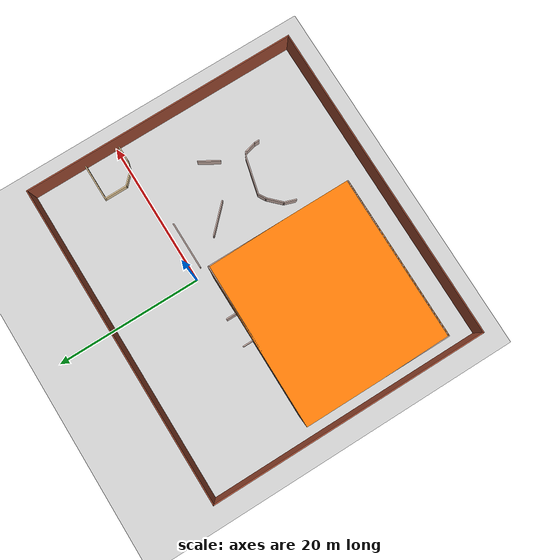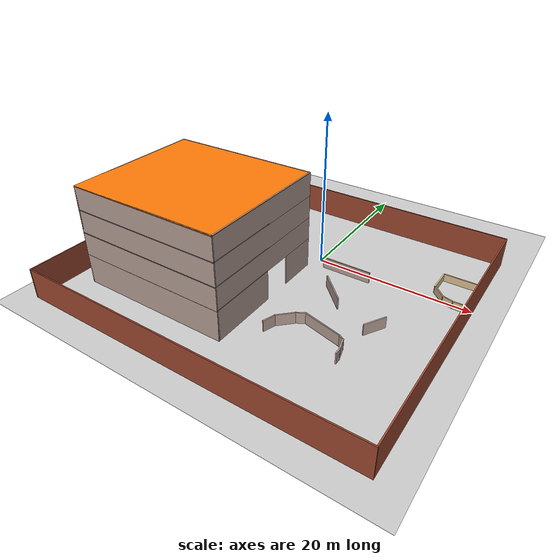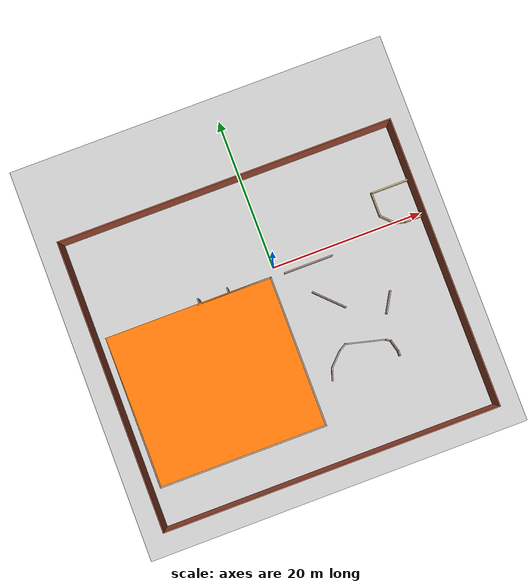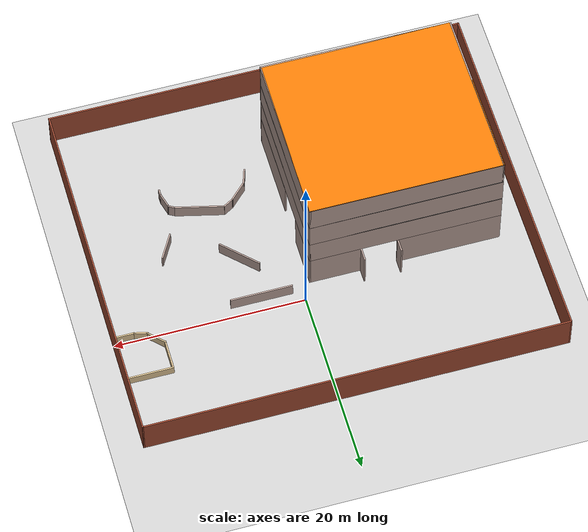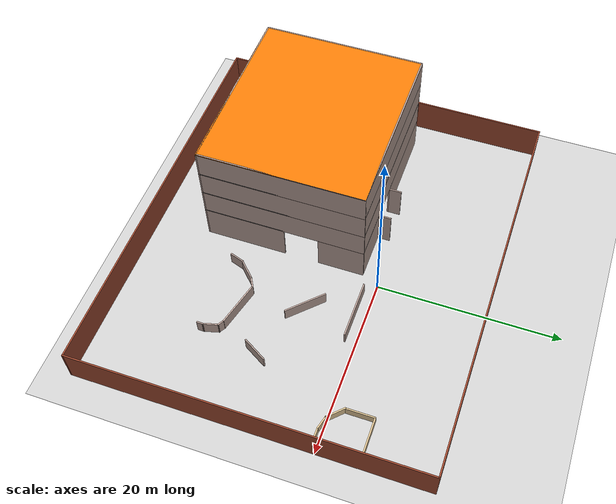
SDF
<sdf version="1.6">
 <world name="default">
  <light name="sun" type="directional">
   <pose>0 0 10 0 -0 0</pose>
   <diffuse>0.8 0.8 0.8 1</diffuse>
   <specular>0.2 0.2 0.2 1</specular>
   <attenuation>
    <range>1000</range>
    <constant>0.9</constant>
    <linear>0.01</linear>
    <quadratic>0.001</quadratic>
   </attenuation>
   <direction>-0.5 0.1 -0.9</direction>
  </light>
  <model name="ground_plane">
   <static>1</static>
   <link name="link">
    <collision name="collision">
     <geometry><plane><normal>0 0 1</normal><size>100 100</size></plane></geometry>
     <surface><friction><ode><mu>100</mu><mu2>50</mu2></ode></friction></surface>
    </collision>
    <visual name="visual">
     <cast_shadows>0</cast_shadows>
     <geometry><plane><normal>0 0 1</normal><size>100 100</size></plane></geometry>
     <material>
      <script><uri>file://media/materials/scripts/gazebo.material</uri><name>Gazebo/Grey</name></script>
     </material>
    </visual>
   </link>
  </model>
  <gravity>0 0 -9.8</gravity>
  <magnetic_field>6e-06 2.3e-05 -4.2e-05</magnetic_field>
  <atmosphere type="adiabatic"/>
  <physics name="default_physics" default="0" type="ode">
   <max_step_size>0.001</max_step_size>
   <real_time_factor>1</real_time_factor>
   <real_time_update_rate>1000</real_time_update_rate>
  </physics>
  <scene><ambient>0.4 0.4 0.4 1</ambient><background>0.7 0.7 0.7 1</background><shadows>1</shadows></scene>
  <audio><device>default</device></audio>
  <spherical_coordinates>
   <surface_model>EARTH_WGS84</surface_model>
   <latitude_deg>0</latitude_deg>
   <longitude_deg>0</longitude_deg>
   <elevation>0</elevation>
   <heading_deg>0</heading_deg>
  </spherical_coordinates>
  <model name="building2">
   <pose>-11 -10.325 0 0 -0 0</pose>
   <link name="Floor_0">
    <collision name="Floor_0_Collision">
     <geometry><box><size>20.15 18.15 0.1</size></box></geometry>
     <pose>0 0 0.05 0 -0 0</pose>
    </collision>
    <visual name="Floor_0_Visual">
     <pose>0 0 0.05 0 -0 0</pose>
     <geometry><box><size>20.15 18.15 0.1</size></box></geometry>
     <material>
      <script><uri>file://media/materials/scripts/gazebo.material</uri><name>Gazebo/Grey</name></script>
      <ambient>1 1 1 1</ambient>
     </material>
     <meta><layer>1</layer></meta>
    </visual>
    <pose>-0 -0.675 4 0 -0 0</pose>
   </link>
   <link name="Floor_2">
    <collision name="Floor_2_Collision">
     <geometry><box><size>20.15 18.15 0.1</size></box></geometry>
     <pose>0 0 0.05 0 -0 0</pose>
    </collision>
    <visual name="Floor_2_Visual">
     <pose>0 0 0.05 0 -0 0</pose>
     <geometry><box><size>20.15 18.15 0.1</size></box></geometry>
     <material>
      <script><uri>file://media/materials/scripts/gazebo.material</uri><name>Gazebo/Grey</name></script>
      <ambient>1 1 1 1</ambient>
     </material>
     <meta><layer>2</layer></meta>
    </visual>
    <pose>-0 -0.675 7 0 -0 0</pose>
   </link>
   <link name="Floor_3">
    <collision name="Floor_3_Collision">
     <geometry><box><size>20.15 18.15 0.1</size></box></geometry>
     <pose>0 0 0.05 0 -0 0</pose>
    </collision>
    <visual name="Floor_3_Visual">
     <pose>0 0 0.05 0 -0 0</pose>
     <geometry><box><size>20.15 18.15 0.1</size></box></geometry>
     <material>
      <script><uri>file://media/materials/scripts/gazebo.material</uri><name>Gazebo/Grey</name></script>
      <ambient>1 1 1 1</ambient>
     </material>
     <meta><layer>3</layer></meta>
    </visual>
    <pose>-0 -0.675 10 0 -0 0</pose>
   </link>
   <link name="Floor_8">
    <collision name="Floor_8_Collision">
     <geometry><box><size>20.15 18.15 0.1</size></box></geometry>
     <pose>0 0 0.05 0 -0 0</pose>
    </collision>
    <visual name="Floor_8_Visual">
     <pose>0 0 0.05 0 -0 0</pose>
     <geometry><box><size>20.15 18.15 0.1</size></box></geometry>
     <material>
      <script><uri>file://media/materials/scripts/gazebo.material</uri><name>Gazebo/Grey</name></script>
      <ambient>0.996078 0.47451 0.0196078 1</ambient>
     </material>
     <meta><layer>4</layer></meta>
    </visual>
    <pose>-0 -0.675 13 0 -0 0</pose>
   </link>
   <link name="Wall_11">
    <collision name="Wall_11_Collision">
     <geometry><box><size>1.5 0.15 4</size></box></geometry>
     <pose>0 0 2 0 -0 0</pose>
    </collision>
    <visual name="Wall_11_Visual">
     <pose>0 0 2 0 -0 0</pose>
     <geometry><box><size>1.5 0.15 4</size></box></geometry>
     <material>
      <script><uri>file://media/materials/scripts/gazebo.material</uri><name>Gazebo/Grey</name></script>
      <ambient>0.760784 0.662745 0.627451 1</ambient>
     </material>
     <meta><layer>0</layer></meta>
    </visual>
    <pose>0.8 9 0 0 -0 -1.5708</pose>
   </link>
   <link name="Wall_12">
    <collision name="Wall_12_Collision">
     <geometry><box><size>10.95 0.15 4</size></box></geometry>
     <pose>0 0 2 0 -0 0</pose>
    </collision>
    <visual name="Wall_12_Visual">
     <pose>0 0 2 0 -0 0</pose>
     <geometry><box><size>10.95 0.15 4</size></box></geometry>
     <material>
      <script><uri>file://media/materials/scripts/gazebo.material</uri><name>Gazebo/Grey</name></script>
      <ambient>0.760784 0.662745 0.627451 1</ambient>
     </material>
     <meta><layer>0</layer></meta>
    </visual>
    <pose>-4.6 8.325 0 0 -0 3.14159</pose>
   </link>
   <link name="Wall_14">
    <collision name="Wall_14_Collision">
     <geometry><box><size>18.15 0.15 4</size></box></geometry>
     <pose>0 0 2 0 -0 0</pose>
    </collision>
    <visual name="Wall_14_Visual">
     <pose>0 0 2 0 -0 0</pose>
     <geometry><box><size>18.15 0.15 4</size></box></geometry>
     <material>
      <script><uri>file://media/materials/scripts/gazebo.material</uri><name>Gazebo/Grey</name></script>
      <ambient>0.760784 0.662745 0.627451 1</ambient>
     </material>
     <meta><layer>0</layer></meta>
    </visual>
    <pose>-10 -0.675 0 0 -0 -1.5708</pose>
   </link>
   <link name="Wall_16">
    <collision name="Wall_16_Collision">
     <geometry><box><size>20.15 0.15 4</size></box></geometry>
     <pose>0 0 2 0 -0 0</pose>
    </collision>
    <visual name="Wall_16_Visual">
     <pose>0 0 2 0 -0 0</pose>
     <geometry><box><size>20.15 0.15 4</size></box></geometry>
     <material>
      <script><uri>file://media/materials/scripts/gazebo.material</uri><name>Gazebo/Grey</name></script>
      <ambient>0.760784 0.662745 0.627451 1</ambient>
     </material>
     <meta><layer>0</layer></meta>
    </visual>
    <pose>-0 -9.675 0 0 -0 0</pose>
   </link>
   <link name="Wall_24">
    <collision name="Wall_24_Collision">
     <geometry><box><size>18.15 0.15 3</size></box></geometry>
     <pose>0 0 1.5 0 -0 0</pose>
    </collision>
    <visual name="Wall_24_Visual">
     <pose>0 0 1.5 0 -0 0</pose>
     <geometry><box><size>18.15 0.15 3</size></box></geometry>
     <material>
      <script><uri>file://media/materials/scripts/gazebo.material</uri><name>Gazebo/Grey</name></script>
      <ambient>0.760784 0.662745 0.627451 1</ambient>
     </material>
     <meta><layer>1</layer></meta>
    </visual>
    <pose>-10 -0.675 4 0 -0 -1.5708</pose>
   </link>
   <link name="Wall_25">
    <collision name="Wall_25_Collision">
     <geometry><box><size>20.15 0.15 3</size></box></geometry>
     <pose>0 0 1.5 0 -0 0</pose>
    </collision>
    <visual name="Wall_25_Visual">
     <pose>0 0 1.5 0 -0 0</pose>
     <geometry><box><size>20.15 0.15 3</size></box></geometry>
     <material>
      <script><uri>file://media/materials/scripts/gazebo.material</uri><name>Gazebo/Grey</name></script>
      <ambient>0.760784 0.662745 0.627451 1</ambient>
     </material>
     <meta><layer>1</layer></meta>
    </visual>
    <pose>-0 -9.675 4 0 -0 0</pose>
   </link>
   <link name="Wall_31">
    <collision name="Wall_31_Collision">
     <geometry><box><size>20.15 0.15 3</size></box></geometry>
     <pose>0 0 1.5 0 -0 0</pose>
    </collision>
    <visual name="Wall_31_Visual">
     <pose>0 0 1.5 0 -0 0</pose>
     <geometry><box><size>20.15 0.15 3</size></box></geometry>
     <material>
      <script><uri>file://media/materials/scripts/gazebo.material</uri><name>Gazebo/Grey</name></script>
      <ambient>0.760784 0.662745 0.627451 1</ambient>
     </material>
     <meta><layer>1</layer></meta>
    </visual>
    <pose>-0 8.325 4 0 -0 0</pose>
   </link>
   <link name="Wall_33">
    <collision name="Wall_33_Collision">
     <geometry><box><size>18 0.15 3</size></box></geometry>
     <pose>0 0 1.5 0 -0 0</pose>
    </collision>
    <visual name="Wall_33_Visual">
     <pose>0 0 1.5 0 -0 0</pose>
     <geometry><box><size>18 0.15 3</size></box></geometry>
     <material>
      <script><uri>file://media/materials/scripts/gazebo.material</uri><name>Gazebo/Grey</name></script>
      <ambient>0.760784 0.662745 0.627451 1</ambient>
     </material>
     <meta><layer>1</layer></meta>
    </visual>
    <pose>10 -0.6 4 0 -0 -1.5708</pose>
   </link>
   <link name="Wall_4">
    <collision name="Wall_4_Collision">
     <geometry><box><size>5.15 0.15 4</size></box></geometry>
     <pose>0 0 2 0 -0 0</pose>
    </collision>
    <visual name="Wall_4_Visual">
     <pose>0 0 2 0 -0 0</pose>
     <geometry><box><size>5.15 0.15 4</size></box></geometry>
     <material>
      <script><uri>file://media/materials/scripts/gazebo.material</uri><name>Gazebo/Grey</name></script>
      <ambient>0.760784 0.662745 0.627451 1</ambient>
     </material>
     <meta><layer>0</layer></meta>
    </visual>
    <pose>10 5.825 0 0 -0 -1.5708</pose>
   </link>
   <link name="Wall_42">
    <collision name="Wall_42_Collision">
     <geometry><box><size>18.15 0.15 3</size></box></geometry>
     <pose>0 0 1.5 0 -0 0</pose>
    </collision>
    <visual name="Wall_42_Visual">
     <pose>0 0 1.5 0 -0 0</pose>
     <geometry><box><size>18.15 0.15 3</size></box></geometry>
     <material>
      <script><uri>file://media/materials/scripts/gazebo.material</uri><name>Gazebo/Grey</name></script>
      <ambient>0.760784 0.662745 0.627451 1</ambient>
     </material>
     <meta><layer>2</layer></meta>
    </visual>
    <pose>-10 -0.675 7 0 -0 -1.5708</pose>
   </link>
   <link name="Wall_43">
    <collision name="Wall_43_Collision">
     <geometry><box><size>20.15 0.15 3</size></box></geometry>
     <pose>0 0 1.5 0 -0 0</pose>
    </collision>
    <visual name="Wall_43_Visual">
     <pose>0 0 1.5 0 -0 0</pose>
     <geometry><box><size>20.15 0.15 3</size></box></geometry>
     <material>
      <script><uri>file://media/materials/scripts/gazebo.material</uri><name>Gazebo/Grey</name></script>
      <ambient>0.760784 0.662745 0.627451 1</ambient>
     </material>
     <meta><layer>2</layer></meta>
    </visual>
    <pose>-0 -9.675 7 0 -0 0</pose>
   </link>
   <link name="Wall_44">
    <collision name="Wall_44_Collision">
     <geometry><box><size>20.15 0.15 3</size></box></geometry>
     <pose>0 0 1.5 0 -0 0</pose>
    </collision>
    <visual name="Wall_44_Visual">
     <pose>0 0 1.5 0 -0 0</pose>
     <geometry><box><size>20.15 0.15 3</size></box></geometry>
     <material>
      <script><uri>file://media/materials/scripts/gazebo.material</uri><name>Gazebo/Grey</name></script>
      <ambient>0.760784 0.662745 0.627451 1</ambient>
     </material>
     <meta><layer>2</layer></meta>
    </visual>
    <pose>-0 8.325 7 0 -0 0</pose>
   </link>
   <link name="Wall_45">
    <collision name="Wall_45_Collision">
     <geometry><box><size>18 0.15 3</size></box></geometry>
     <pose>0 0 1.5 0 -0 0</pose>
    </collision>
    <visual name="Wall_45_Visual">
     <pose>0 0 1.5 0 -0 0</pose>
     <geometry><box><size>18 0.15 3</size></box></geometry>
     <material>
      <script><uri>file://media/materials/scripts/gazebo.material</uri><name>Gazebo/Grey</name></script>
      <ambient>0.760784 0.662745 0.627451 1</ambient>
     </material>
     <meta><layer>2</layer></meta>
    </visual>
    <pose>10 -0.6 7 0 -0 -1.5708</pose>
   </link>
   <link name="Wall_46">
    <collision name="Wall_46_Collision">
     <geometry><box><size>18.15 0.15 3</size></box></geometry>
     <pose>0 0 1.5 0 -0 0</pose>
    </collision>
    <visual name="Wall_46_Visual">
     <pose>0 0 1.5 0 -0 0</pose>
     <geometry><box><size>18.15 0.15 3</size></box></geometry>
     <material>
      <script><uri>file://media/materials/scripts/gazebo.material</uri><name>Gazebo/Grey</name></script>
      <ambient>0.760784 0.662745 0.627451 1</ambient>
     </material>
     <meta><layer>3</layer></meta>
    </visual>
    <pose>-10 -0.675 10 0 -0 -1.5708</pose>
   </link>
   <link name="Wall_47">
    <collision name="Wall_47_Collision">
     <geometry><box><size>20.15 0.15 3</size></box></geometry>
     <pose>0 0 1.5 0 -0 0</pose>
    </collision>
    <visual name="Wall_47_Visual">
     <pose>0 0 1.5 0 -0 0</pose>
     <geometry><box><size>20.15 0.15 3</size></box></geometry>
     <material>
      <script><uri>file://media/materials/scripts/gazebo.material</uri><name>Gazebo/Grey</name></script>
      <ambient>0.760784 0.662745 0.627451 1</ambient>
     </material>
     <meta><layer>3</layer></meta>
    </visual>
    <pose>-0 -9.675 10 0 -0 0</pose>
   </link>
   <link name="Wall_48">
    <collision name="Wall_48_Collision">
     <geometry><box><size>20.15 0.15 3</size></box></geometry>
     <pose>0 0 1.5 0 -0 0</pose>
    </collision>
    <visual name="Wall_48_Visual">
     <pose>0 0 1.5 0 -0 0</pose>
     <geometry><box><size>20.15 0.15 3</size></box></geometry>
     <material>
      <script><uri>file://media/materials/scripts/gazebo.material</uri><name>Gazebo/Grey</name></script>
      <ambient>0.760784 0.662745 0.627451 1</ambient>
     </material>
     <meta><layer>3</layer></meta>
    </visual>
    <pose>-0 8.325 10 0 -0 0</pose>
   </link>
   <link name="Wall_49">
    <collision name="Wall_49_Collision">
     <geometry><box><size>18 0.15 3</size></box></geometry>
     <pose>0 0 1.5 0 -0 0</pose>
    </collision>
    <visual name="Wall_49_Visual">
     <pose>0 0 1.5 0 -0 0</pose>
     <geometry><box><size>18 0.15 3</size></box></geometry>
     <material>
      <script><uri>file://media/materials/scripts/gazebo.material</uri><name>Gazebo/Grey</name></script>
      <ambient>0.760784 0.662745 0.627451 1</ambient>
     </material>
     <meta><layer>3</layer></meta>
    </visual>
    <pose>10 -0.6 10 0 -0 -1.5708</pose>
   </link>
   <link name="Wall_6">
    <collision name="Wall_6_Collision">
     <geometry><box><size>9.15 0.15 4</size></box></geometry>
     <pose>0 0 2 0 -0 0</pose>
    </collision>
    <visual name="Wall_6_Visual">
     <pose>0 0 2 0 -0 0</pose>
     <geometry><box><size>9.15 0.15 4</size></box></geometry>
     <material>
      <script><uri>file://media/materials/scripts/gazebo.material</uri><name>Gazebo/Grey</name></script>
      <ambient>0.760784 0.662745 0.627451 1</ambient>
     </material>
     <meta><layer>0</layer></meta>
    </visual>
    <pose>10 -5.175 0 0 -0 -1.5708</pose>
   </link>
   <link name="Wall_76">
    <collision name="Wall_76_Collision">
     <geometry><box><size>18.15 0.15 0.1</size></box></geometry>
     <pose>0 0 0.05 0 -0 0</pose>
    </collision>
    <visual name="Wall_76_Visual">
     <pose>0 0 0.05 0 -0 0</pose>
     <geometry><box><size>18.15 0.15 0.1</size></box></geometry>
     <material>
      <script><uri>file://media/materials/scripts/gazebo.material</uri><name>Gazebo/Grey</name></script>
      <ambient>0.760784 0.662745 0.627451 1</ambient>
     </material>
     <meta><layer>4</layer></meta>
    </visual>
    <pose>-10 -0.675 13 0 -0 -1.5708</pose>
   </link>
   <link name="Wall_77">
    <collision name="Wall_77_Collision">
     <geometry><box><size>20.15 0.15 0.1</size></box></geometry>
     <pose>0 0 0.05 0 -0 0</pose>
    </collision>
    <visual name="Wall_77_Visual">
     <pose>0 0 0.05 0 -0 0</pose>
     <geometry><box><size>20.15 0.15 0.1</size></box></geometry>
     <material>
      <script><uri>file://media/materials/scripts/gazebo.material</uri><name>Gazebo/Grey</name></script>
      <ambient>0.760784 0.662745 0.627451 1</ambient>
     </material>
     <meta><layer>4</layer></meta>
    </visual>
    <pose>-0 -9.675 13 0 -0 0</pose>
   </link>
   <link name="Wall_78">
    <collision name="Wall_78_Collision">
     <geometry><box><size>20.15 0.15 0.1</size></box></geometry>
     <pose>0 0 0.05 0 -0 0</pose>
    </collision>
    <visual name="Wall_78_Visual">
     <pose>0 0 0.05 0 -0 0</pose>
     <geometry><box><size>20.15 0.15 0.1</size></box></geometry>
     <material>
      <script><uri>file://media/materials/scripts/gazebo.material</uri><name>Gazebo/Grey</name></script>
      <ambient>0.760784 0.662745 0.627451 1</ambient>
     </material>
     <meta><layer>4</layer></meta>
    </visual>
    <pose>-0 8.325 13 0 -0 0</pose>
   </link>
   <link name="Wall_79">
    <collision name="Wall_79_Collision">
     <geometry><box><size>18 0.15 0.1</size></box></geometry>
     <pose>0 0 0.05 0 -0 0</pose>
    </collision>
    <visual name="Wall_79_Visual">
     <pose>0 0 0.05 0 -0 0</pose>
     <geometry><box><size>18 0.15 0.1</size></box></geometry>
     <material>
      <script><uri>file://media/materials/scripts/gazebo.material</uri><name>Gazebo/Grey</name></script>
      <ambient>0.760784 0.662745 0.627451 1</ambient>
     </material>
     <meta><layer>4</layer></meta>
    </visual>
    <pose>10 -0.6 13 0 -0 -1.5708</pose>
   </link>
   <link name="Wall_8">
    <collision name="Wall_8_Collision">
     <geometry><box><size>5.5 0.15 4</size></box></geometry>
     <pose>0 0 2 0 -0 0</pose>
    </collision>
    <visual name="Wall_8_Visual">
     <pose>0 0 2 0 -0 0</pose>
     <geometry><box><size>5.5 0.15 4</size></box></geometry>
     <material>
      <script><uri>file://media/materials/scripts/gazebo.material</uri><name>Gazebo/Grey</name></script>
      <ambient>0.760784 0.662745 0.627451 1</ambient>
     </material>
     <meta><layer>0</layer></meta>
    </visual>
    <pose>7.325 8.325 0 0 -0 3.14159</pose>
   </link>
   <link name="Wall_9">
    <collision name="Wall_9_Collision">
     <geometry><box><size>1.5 0.15 4</size></box></geometry>
     <pose>0 0 2 0 -0 0</pose>
    </collision>
    <visual name="Wall_9_Visual">
     <pose>0 0 2 0 -0 0</pose>
     <geometry><box><size>1.5 0.15 4</size></box></geometry>
     <material>
      <script><uri>file://media/materials/scripts/gazebo.material</uri><name>Gazebo/Grey</name></script>
      <ambient>0.760784 0.662745 0.627451 1</ambient>
     </material>
     <meta><layer>0</layer></meta>
    </visual>
    <pose>4.65 9 0 0 -0 1.5708</pose>
   </link>
   <static>1</static>
  </model>
  <model name="wall11">
   <pose>-2 -7 0 0 -0 0</pose>
   <link name="Wall_0">
    <collision name="Wall_0_Collision">
     <geometry><box><size>44.15 0.15 4</size></box></geometry>
     <pose>0 0 2 0 -0 0</pose>
    </collision>
    <visual name="Wall_0_Visual">
     <pose>0 0 2 0 -0 0</pose>
     <geometry><box><size>44.15 0.15 4</size></box></geometry>
     <material>
      <script><uri>file://media/materials/scripts/gazebo.material</uri><name>Gazebo/Bricks</name></script>
      <ambient>1 1 1 1</ambient>
     </material>
     <meta><layer>0</layer></meta>
    </visual>
    <pose>0 19 0 0 -0 0</pose>
   </link>
   <link name="Wall_2">
    <collision name="Wall_2_Collision">
     <geometry><box><size>38.15 0.15 4</size></box></geometry>
     <pose>0 0 2 0 -0 0</pose>
    </collision>
    <visual name="Wall_2_Visual">
     <pose>0 0 2 0 -0 0</pose>
     <geometry><box><size>38.15 0.15 4</size></box></geometry>
     <material>
      <script><uri>file://media/materials/scripts/gazebo.material</uri><name>Gazebo/Bricks</name></script>
      <ambient>1 1 1 1</ambient>
     </material>
     <meta><layer>0</layer></meta>
    </visual>
    <pose>22 0 0 0 -0 -1.5708</pose>
   </link>
   <link name="Wall_4">
    <collision name="Wall_4_Collision">
     <geometry><box><size>44.15 0.15 4</size></box></geometry>
     <pose>0 0 2 0 -0 0</pose>
    </collision>
    <visual name="Wall_4_Visual">
     <pose>0 0 2 0 -0 0</pose>
     <geometry><box><size>44.15 0.15 4</size></box></geometry>
     <material>
      <script><uri>file://media/materials/scripts/gazebo.material</uri><name>Gazebo/Bricks</name></script>
      <ambient>1 1 1 1</ambient>
     </material>
     <meta><layer>0</layer></meta>
    </visual>
    <pose>0 -19 0 0 -0 3.14159</pose>
   </link>
   <link name="Wall_6">
    <collision name="Wall_6_Collision">
     <geometry><box><size>38.15 0.15 4</size></box></geometry>
     <pose>0 0 2 0 -0 0</pose>
    </collision>
    <visual name="Wall_6_Visual">
     <pose>0 0 2 0 -0 0</pose>
     <geometry><box><size>38.15 0.15 4</size></box></geometry>
     <material>
      <script><uri>file://media/materials/scripts/gazebo.material</uri><name>Gazebo/Bricks</name></script>
      <ambient>1 1 1 1</ambient>
     </material>
     <meta><layer>0</layer></meta>
    </visual>
    <pose>-22 0 0 0 -0 1.5708</pose>
   </link>
   <static>1</static>
  </model>
  <model name="wall12">
   <pose>6.96274 -8.60893 0 0 -0 0</pose>
   <link name="Wall_0">
    <collision name="Wall_0_Collision">
     <geometry><box><size>1.73114 0.15 1.5</size></box></geometry>
     <pose>0 0 0.75 0 -0 0</pose>
    </collision>
    <visual name="Wall_0_Visual">
     <pose>0 0 0.75 0 -0 0</pose>
     <geometry><box><size>1.73114 0.15 1.5</size></box></geometry>
     <material>
      <script><uri>file://media/materials/scripts/gazebo.material</uri><name>Gazebo/Grey</name></script>
      <ambient>0.760784 0.662745 0.627451 1</ambient>
     </material>
     <meta><layer>0</layer></meta>
    </visual>
    <pose>-4.71274 -6.64107 0 0 -0 1.24905</pose>
   </link>
   <link name="Wall_13">
    <collision name="Wall_13_Collision">
     <geometry><box><size>6.5 0.15 1.5</size></box></geometry>
     <pose>0 0 0.75 0 -0 0</pose>
    </collision>
    <visual name="Wall_13_Visual">
     <pose>0 0 0.75 0 -0 0</pose>
     <geometry><box><size>6.5 0.15 1.5</size></box></geometry>
     <material>
      <script><uri>file://media/materials/scripts/gazebo.material</uri><name>Gazebo/Grey</name></script>
      <ambient>0.760784 0.662745 0.627451 1</ambient>
     </material>
     <meta><layer>0</layer></meta>
    </visual>
    <pose>-2.67774 7.41093 0 0 -0 0</pose>
   </link>
   <link name="Wall_15">
    <collision name="Wall_15_Collision">
     <geometry><box><size>4.75 0.15 1.5</size></box></geometry>
     <pose>0 0 0.75 0 -0 0</pose>
    </collision>
    <visual name="Wall_15_Visual">
     <pose>0 0 0.75 0 -0 0</pose>
     <geometry><box><size>4.75 0.15 1.5</size></box></geometry>
     <material>
      <script><uri>file://media/materials/scripts/gazebo.material</uri><name>Gazebo/Grey</name></script>
      <ambient>0.760784 0.662745 0.627451 1</ambient>
     </material>
     <meta><layer>0</layer></meta>
    </visual>
    <pose>-1.78524 2.28593 0 0 -0 -0.785244</pose>
   </link>
   <link name="Wall_2">
    <collision name="Wall_2_Collision">
     <geometry><box><size>2.5 0.15 1.5</size></box></geometry>
     <pose>0 0 0.75 0 -0 0</pose>
    </collision>
    <visual name="Wall_2_Visual">
     <pose>0 0 0.75 0 -0 0</pose>
     <geometry><box><size>2.5 0.15 1.5</size></box></geometry>
     <material>
      <script><uri>file://media/materials/scripts/gazebo.material</uri><name>Gazebo/Grey</name></script>
      <ambient>0.760784 0.662745 0.627451 1</ambient>
     </material>
     <meta><layer>0</layer></meta>
    </visual>
    <pose>-3.63175 -5.06007 0 0 -0 0.785398</pose>
   </link>
   <link name="Wall_3">
    <collision name="Wall_3_Collision">
     <geometry><box><size>1.25 0.15 1.5</size></box></geometry>
     <pose>0 0 0.75 0 -0 0</pose>
    </collision>
    <visual name="Wall_3_Visual">
     <pose>0 0 0.75 0 -0 0</pose>
     <geometry><box><size>1.25 0.15 1.5</size></box></geometry>
     <material>
      <script><uri>file://media/materials/scripts/gazebo.material</uri><name>Gazebo/Grey</name></script>
      <ambient>0.760784 0.662745 0.627451 1</ambient>
     </material>
     <meta><layer>0</layer></meta>
    </visual>
    <pose>-2.32475 -3.95407 0 0 -0 0.523884</pose>
   </link>
   <link name="Wall_5">
    <collision name="Wall_5_Collision">
     <geometry><box><size>0.75 0.15 1.5</size></box></geometry>
     <pose>0 0 0.75 0 -0 0</pose>
    </collision>
    <visual name="Wall_5_Visual">
     <pose>0 0 0.75 0 -0 0</pose>
     <geometry><box><size>0.75 0.15 1.5</size></box></geometry>
     <material>
      <script><uri>file://media/materials/scripts/gazebo.material</uri><name>Gazebo/Grey</name></script>
      <ambient>0.760784 0.662745 0.627451 1</ambient>
     </material>
     <meta><layer>0</layer></meta>
    </visual>
    <pose>4.07425 -7.09807 0 0 -0 1.5708</pose>
   </link>
   <link name="Wall_6">
    <collision name="Wall_6_Collision">
     <geometry><box><size>1.75 0.15 1.5</size></box></geometry>
     <pose>0 0 0.75 0 -0 0</pose>
    </collision>
    <visual name="Wall_6_Visual">
     <pose>0 0 0.75 0 -0 0</pose>
     <geometry><box><size>1.75 0.15 1.5</size></box></geometry>
     <material>
      <script><uri>file://media/materials/scripts/gazebo.material</uri><name>Gazebo/Grey</name></script>
      <ambient>0.760784 0.662745 0.627451 1</ambient>
     </material>
     <meta><layer>0</layer></meta>
    </visual>
    <pose>3.86726 -6.02557 0 0 -0 1.83261</pose>
   </link>
   <link name="Wall_7">
    <collision name="Wall_7_Collision">
     <geometry><box><size>0.75 0.15 1.5</size></box></geometry>
     <pose>0 0 0.75 0 -0 0</pose>
    </collision>
    <visual name="Wall_7_Visual">
     <pose>0 0 0.75 0 -0 0</pose>
     <geometry><box><size>0.75 0.15 1.5</size></box></geometry>
     <material>
      <script><uri>file://media/materials/scripts/gazebo.material</uri><name>Gazebo/Grey</name></script>
      <ambient>0.760784 0.662745 0.627451 1</ambient>
     </material>
     <meta><layer>0</layer></meta>
    </visual>
    <pose>3.40026 -5.10307 0 0 -0 2.61831</pose>
   </link>
   <link name="Wall_9">
    <collision name="Wall_9_Collision">
     <geometry><box><size>3 0.15 1.5</size></box></geometry>
     <pose>0 0 0.75 0 -0 0</pose>
    </collision>
    <visual name="Wall_9_Visual">
     <pose>0 0 0.75 0 -0 0</pose>
     <geometry><box><size>3 0.15 1.5</size></box></geometry>
     <material>
      <script><uri>file://media/materials/scripts/gazebo.material</uri><name>Gazebo/Grey</name></script>
      <ambient>0.760784 0.662745 0.627451 1</ambient>
     </material>
     <meta><layer>0</layer></meta>
    </visual>
    <pose>5.11275 -0.631066 0 0 -0 1.04717</pose>
   </link>
   <static>1</static>
  </model>
  <model name="wall1">
   <pose>7.6 -12.9 0 0 -0 0</pose>
   <link name="Wall_0">
    <collision name="Wall_0_Collision">
     <geometry><box><size>5.09773 0.15 1.5</size></box></geometry>
     <pose>0 0 0.75 0 -0 0</pose>
    </collision>
    <visual name="Wall_0_Visual">
     <pose>0 0 0.75 0 -0 0</pose>
     <geometry><box><size>5.09773 0.15 1.5</size></box></geometry>
     <material>
      <script><uri>file://media/materials/scripts/gazebo.material</uri><name>Gazebo/Grey</name></script>
      <ambient>0.760784 0.662745 0.627451 1</ambient>
     </material>
     <meta><layer>0</layer></meta>
    </visual>
    <pose>0 0 0 0 -0 -0.244979</pose>
   </link>
   <static>1</static>
  </model>
  <model name="Untitle">
   <pose>17.4845 2.02457 0 0 -0 0</pose>
   <link name="Wall_0">
    <collision name="Wall_0_Collision">
     <geometry><box><size>5.15 0.15 1</size></box></geometry>
     <pose>0 0 0.5 0 -0 0</pose>
    </collision>
    <visual name="Wall_0_Visual">
     <pose>0 0 0.5 0 -0 0</pose>
     <geometry><box><size>5.15 0.15 1</size></box></geometry>
     <material>
      <script><uri>file://media/materials/scripts/gazebo.material</uri><name>Gazebo/Grey</name></script>
      <ambient>0.921569 0.807843 0.615686 1</ambient>
     </material>
     <meta><layer>0</layer></meta>
    </visual>
    <pose>0.015513 2.47543 0 0 -0 0</pose>
   </link>
   <link name="Wall_2">
    <collision name="Wall_2_Collision">
     <geometry><box><size>3.25 0.15 1</size></box></geometry>
     <pose>0 0 0.5 0 -0 0</pose>
    </collision>
    <visual name="Wall_2_Visual">
     <pose>0 0 0.5 0 -0 0</pose>
     <geometry><box><size>3.25 0.15 1</size></box></geometry>
     <material>
      <script><uri>file://media/materials/scripts/gazebo.material</uri><name>Gazebo/Grey</name></script>
      <ambient>0.921569 0.807843 0.615686 1</ambient>
     </material>
     <meta><layer>0</layer></meta>
    </visual>
    <pose>-2.48449 0.925427 0 0 -0 -1.5708</pose>
   </link>
   <link name="Wall_3">
    <collision name="Wall_3_Collision">
     <geometry><box><size>2.25 0.15 1</size></box></geometry>
     <pose>0 0 0.5 0 -0 0</pose>
    </collision>
    <visual name="Wall_3_Visual">
     <pose>0 0 0.5 0 -0 0</pose>
     <geometry><box><size>2.25 0.15 1</size></box></geometry>
     <material>
      <script><uri>file://media/materials/scripts/gazebo.material</uri><name>Gazebo/Grey</name></script>
      <ambient>0.921569 0.807843 0.615686 1</ambient>
     </material>
     <meta><layer>0</layer></meta>
    </visual>
    <pose>-1.74199 -1.36707 0 0 -0 -0.785398</pose>
   </link>
   <link name="Wall_4">
    <collision name="Wall_4_Collision">
     <geometry><box><size>1.5 0.15 1</size></box></geometry>
     <pose>0 0 0.5 0 -0 0</pose>
    </collision>
    <visual name="Wall_4_Visual">
     <pose>0 0 0.5 0 -0 0</pose>
     <geometry><box><size>1.5 0.15 1</size></box></geometry>
     <material>
      <script><uri>file://media/materials/scripts/gazebo.material</uri><name>Gazebo/Grey</name></script>
      <ambient>0.921569 0.807843 0.615686 1</ambient>
     </material>
     <meta><layer>0</layer></meta>
    </visual>
    <pose>-0.347487 -2.28407 0 0 -0 -0.261509</pose>
   </link>
   <link name="Wall_5">
    <collision name="Wall_5_Collision">
     <geometry><box><size>2.25 0.15 1</size></box></geometry>
     <pose>0 0 0.5 0 -0 0</pose>
    </collision>
    <visual name="Wall_5_Visual">
     <pose>0 0 0.5 0 -0 0</pose>
     <geometry><box><size>2.25 0.15 1</size></box></geometry>
     <material>
      <script><uri>file://media/materials/scripts/gazebo.material</uri><name>Gazebo/Grey</name></script>
      <ambient>0.921569 0.807843 0.615686 1</ambient>
     </material>
     <meta><layer>0</layer></meta>
    </visual>
    <pose>1.35451 -2.45857 0 0 -0 0</pose>
   </link>
   <static>1</static>
  </model>
 </world>
</sdf>
